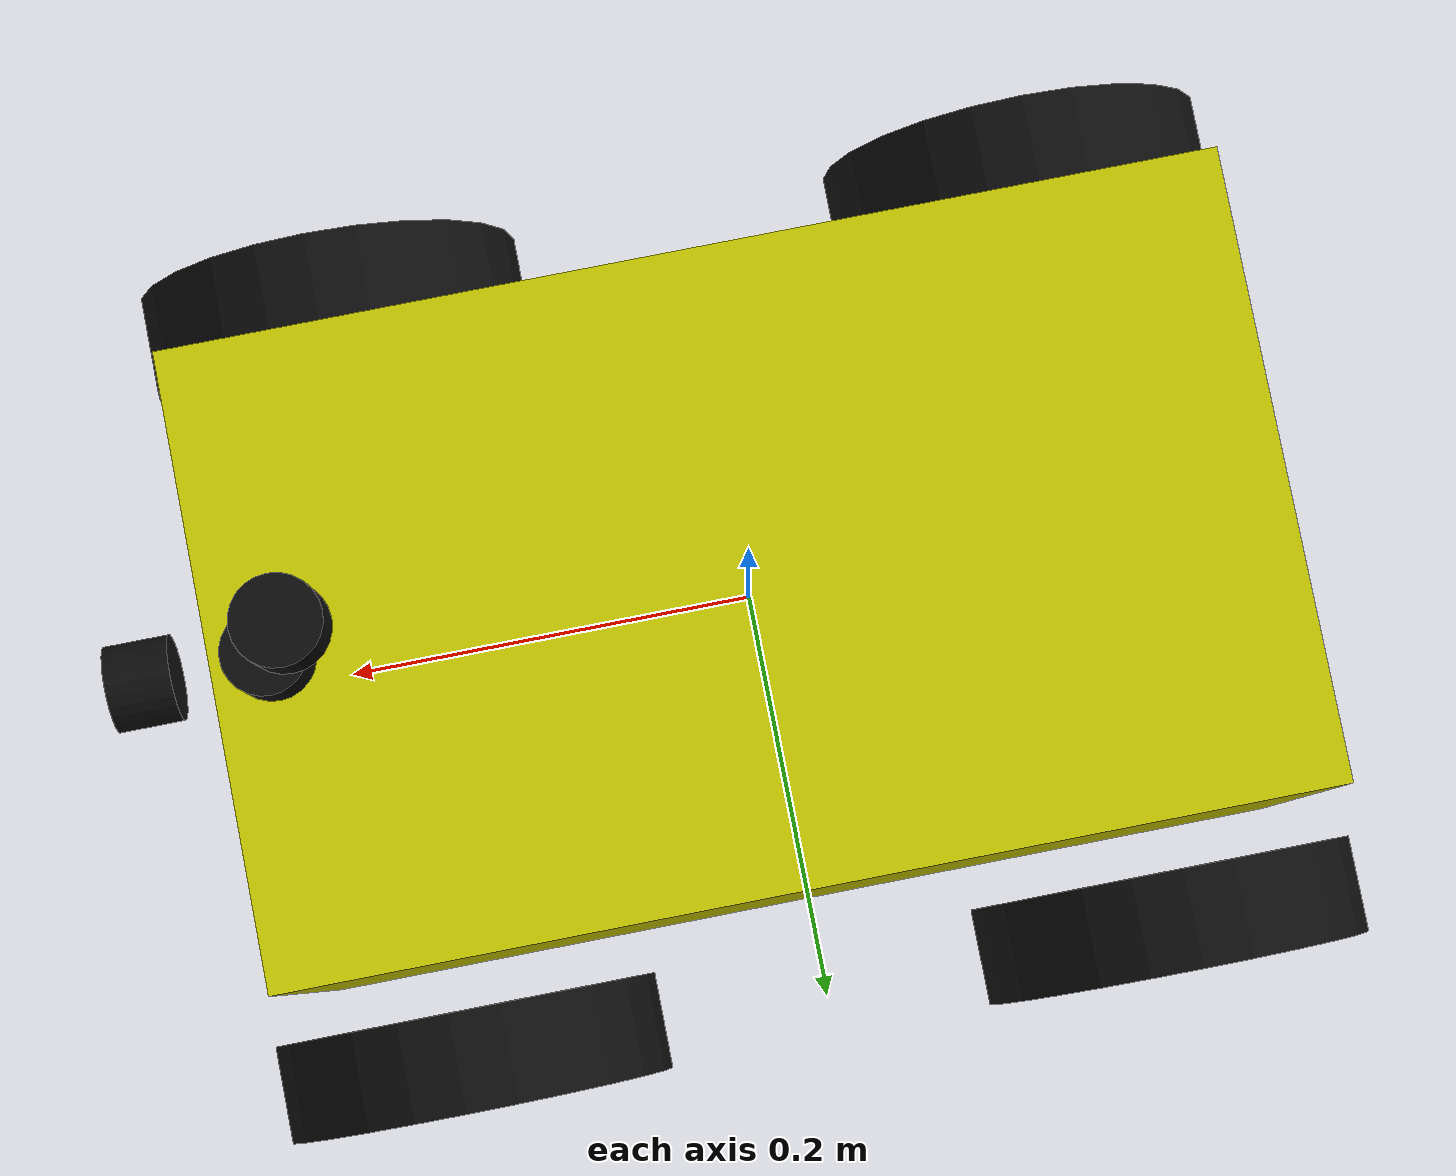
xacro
<?xml version="1.0"?>
<!-- Mikrorobot Mark I -->
<robot name="mikrorobot" xmlns:xacro="http://www.ros.org/wiki/xacro">

  <!-- Use this command to spawn the model in gazebo: rosrun gazebo_ros spawn_model -file `rospack find mikrorobot`/urdf/mikrorobot.urdf -urdf -z 1 -model mikrorobot -->

  <!-- Use this command to generate the urdf (use two -'s in front of inorder): rosrun xacro xacro -inorder mikrorobot.xacro > mikrorobot.urdf -->

  <!-- Constants for robot dimensions -->
  <xacro:property name="PI" value="3.1415926535897931"/>
  <xacro:property name="mass" value="10" /> <!-- arbitrary value for mass -->
  <xacro:property name="width" value="0.3" />
  <xacro:property name="depth" value="0.5" />
  <xacro:property name="height" value="0.27" />
  <xacro:property name="wheel_mass" value="1.5" />
  <xacro:property name="wheel_radius" value="0.1" />
  <xacro:property name="wheel_width" value="0.05" />
  <xacro:property name="camera_link" value="0.05" /> <!-- Size of square 'camera' box -->
  <xacro:property name="wheel_offset_x" value="0.184" /> <!-- Wheel offset depth-direction -->
  <xacro:property name="wheel_offset_y" value="0.198" /> <!-- Wheel offset width-direction -->
  <xacro:property name="wheel_offset_z" value="${-height/2 + 0.04}" /> <!-- Wheel offset height-direction -->

  <!-- Import all Gazebo-customization elements, including Gazebo colors -->
  <xacro:include filename="$(find mikrorobot)/urdf/mikrorobot.gazebo" />

    <!-- Base Link -->
  <link name="base_link">
    <collision>
      <origin xyz="0 0 0" rpy="0 0 0"/>
      <geometry>
	<box size="${depth} ${width} ${height}"/>
      </geometry>
    </collision>

    <visual>
      <origin xyz="0 0 0" rpy="0 0 0"/>
      <geometry>
	<box size="${depth} ${width} ${height}"/>
      </geometry>
      <material name="yellow">
        <color rgba="0.8 0.8 0 1"/>
      </material>
    </visual>

    <inertial>
      <origin xyz="${depth/2} ${width/2} ${height/2}" rpy="0 0 0"/>
      <mass value="${mass}"/>
      <inertia
	  ixx="${mass / 12.0 * (width*width + depth*depth)}" ixy="0.0" ixz="0.0"
	  iyy="${mass / 12.0 * (height*height + depth*depth)}" iyz="0.0"
	  izz="${mass / 12.0 * (width*width + height*height)}"/>
    </inertial>
  </link>

  <!-- Front Right Wheel -->
  <joint name="front_right_wheel_joint" type="continuous">
    <parent link="base_link"/>
    <child link="front_right_wheel"/>
    <origin xyz="${wheel_offset_x} ${-wheel_offset_y} ${wheel_offset_z}" rpy="0 0 0" />
    <axis xyz="0 1 0" rpy="0 0 0" />
  </joint>

  <link name="front_right_wheel">
    <visual>
      <origin xyz="0 0 0" rpy="1.570795 0 0" />
      <geometry>
          <cylinder length="${wheel_width}" radius="${wheel_radius}" />
      </geometry>
      <material name="black">
        <color rgba="0.05 0.05 0.05 1"/>
      </material>
    </visual>

    <collision>
      <origin xyz="0 0 0" rpy="1.570795 0 0"/>
      <geometry>
          <cylinder length="${wheel_width}" radius="${wheel_radius}" />
      </geometry>
    </collision>

    <inertial>
      <mass value="${wheel_mass}" />
      <origin xyz="0 0 ${wheel_width/2}" rpy="0 0 0"/>
      <inertia ixx="${wheel_mass / 12.0*3* (wheel_radius * wheel_radius + wheel_width * wheel_width)}"
               ixy="0"
               ixz="0"
               iyy="${wheel_mass / 12.0*3* (wheel_radius * wheel_radius + wheel_width * wheel_width)}"
               iyz="0"
               izz="${wheel_mass * wheel_radius * wheel_radius / 2.0}" />
    </inertial>
  </link>

  <!-- Back Right Wheel -->
  <joint name="back_right_wheel_joint" type="continuous">
    <parent link="base_link"/>
    <child link="back_right_wheel"/>
    <origin xyz="${-wheel_offset_x} ${-wheel_offset_y} ${wheel_offset_z}" rpy="0 0 0" />
    <axis xyz="0 1 0" rpy="0 0 0" />
  </joint>

  <link name="back_right_wheel">
    <visual>
      <origin xyz="0 0 0" rpy="1.570795 0 0" />
      <geometry>
          <cylinder length="${wheel_width}" radius="${wheel_radius}" />
      </geometry>
      <material name="black"/>
    </visual>

    <collision>
      <origin xyz="0 0 0" rpy="1.570795 0 0"/>
      <geometry>
          <cylinder length="${wheel_width}" radius="${wheel_radius}" />
      </geometry>
    </collision>

    <inertial>
      <mass value="${wheel_mass}" />
      <origin xyz="0 0 ${wheel_width/2}" rpy="0 0 0"/>
      <inertia ixx="${wheel_mass / 12.0*3* (wheel_radius * wheel_radius + wheel_width * wheel_width)}"
               ixy="0"
               ixz="0"
               iyy="${wheel_mass / 12.0*3* (wheel_radius * wheel_radius + wheel_width * wheel_width)}"
               iyz="0"
               izz="${wheel_mass * wheel_radius * wheel_radius / 2.0}" />
    </inertial>
  </link>

  <!-- Front Left Wheel -->
  <joint name="front_left_wheel_joint" type="continuous">
    <parent link="base_link"/>
    <child link="front_left_wheel"/>
    <origin xyz="${wheel_offset_x} ${wheel_offset_y} ${wheel_offset_z}" rpy="0 0 0" />
    <axis xyz="0 1 0" rpy="0 0 0" />
  </joint>

  <link name="front_left_wheel">
    <visual>
      <origin xyz="0 0 0" rpy="1.570795 0 0" />
      <geometry>
          <cylinder length="${wheel_width}" radius="${wheel_radius}" />
      </geometry>
      <material name="black"/>
    </visual>

    <collision>
      <origin xyz="0 0 0" rpy="1.570795 0 0"/>
      <geometry>
          <cylinder length="${wheel_width}" radius="${wheel_radius}" />
      </geometry>
    </collision>

    <inertial>
      <mass value="${wheel_mass}" />
      <origin xyz="0 0 ${wheel_width/2}" rpy="0 0 0"/>
      <inertia ixx="${wheel_mass / 12.0*3* (wheel_radius * wheel_radius + wheel_width * wheel_width)}"
               ixy="0"
               ixz="0"
               iyy="${wheel_mass / 12.0*3* (wheel_radius * wheel_radius + wheel_width * wheel_width)}"
               iyz="0"
               izz="${wheel_mass * wheel_radius * wheel_radius / 2.0}" />
    </inertial>
  </link>

    <!-- Back Left Wheel -->
  <joint name="back_left_wheel_joint" type="continuous">
    <parent link="base_link"/>
    <child link="back_left_wheel"/>
     <origin xyz="${-wheel_offset_x} ${wheel_offset_y} ${wheel_offset_z}" rpy="0 0 0" />
    <axis xyz="0 1 0" rpy="0 0 0" />
  </joint>

  <link name="back_left_wheel">
    <visual>
      <origin xyz="0 0 0" rpy="1.570795 0 0" />
      <geometry>
          <cylinder length="${wheel_width}" radius="${wheel_radius}" />
      </geometry>
      <material name="black"/>
    </visual>

    <collision>
      <origin xyz="0 0 0" rpy="1.570795 0 0"/>
      <geometry>
          <cylinder length="${wheel_width}" radius="${wheel_radius}" />
      </geometry>
    </collision>

    <inertial>
      <mass value="${wheel_mass}" />
      <origin xyz="0 0 ${wheel_width/2}" rpy="0 0 0"/>
      <inertia ixx="${wheel_mass / 12.0*3* (wheel_radius * wheel_radius + wheel_width * wheel_width)}"
               ixy="0"
               ixz="0"
               iyy="${wheel_mass / 12.0*3* (wheel_radius * wheel_radius + wheel_width * wheel_width)}"
               iyz="0"
               izz="${wheel_mass * wheel_radius * wheel_radius / 2.0}" />
    </inertial>
  </link>

    <!-- Camera -->
  <link name="camera_link">

    <collision>
      <origin xyz="0 0 0" rpy="0 0 0"/>
      <geometry>
	<cylinder length="0.03" radius ="0.02"/>
      </geometry>
    </collision>

    <visual>
      <origin xyz="0 0 0" rpy="0 0 0" />
      <geometry>
          <cylinder length="0.03" radius="0.02" />
      </geometry>
      <material name="black"/>
    </visual>

    <inertial>
      <mass value="1e-5" />
      <origin xyz="0 0 0" rpy="0 0 0"/>
      <inertia ixx="1e-6" ixy="0" ixz="0" iyy="1e-6" iyz="0" izz="1e-6" />
    </inertial>
  </link>

  <joint name="camera_joint" type="fixed">
    <parent link="base_link"/>
    <child link="camera_link"/>
    <origin xyz="${depth/2 - 0.03} 0 ${height/2 + 0.02}" rpy="0 0 0" />
    <axis xyz="0 0 0" rpy="0 0 0" />
  </joint>

      <!-- Structure Camera -->
  <link name="camera_depth_optical_frame">

    <collision>
      <origin xyz="0 0 0" rpy="0 0 0"/>
      <geometry>
	<cylinder length="0.03" radius ="0.02"/>
      </geometry>
    </collision>

    <visual>
      <origin xyz="0 0 0" rpy="0 0 0" />
      <geometry>
          <cylinder length="0.03" radius="0.02" />
      </geometry>
      <material name="black"/>
    </visual>

    <inertial>
      <mass value="1e-5" />
      <origin xyz="0 0 0" rpy="0 0 0"/>
      <inertia ixx="1e-6" ixy="0" ixz="0" iyy="1e-6" iyz="0" izz="1e-6" />
    </inertial>
  </link>

  <joint name="structure_camera_joint" type="fixed">
    <parent link="base_link"/>
    <child link="camera_depth_optical_frame"/>
    <origin xyz="${depth/2 + 0.03} 0 ${height/2}" rpy="${-PI/2} 0 ${-PI/2}" />
    <axis xyz="0 0 0" rpy="0 0 0" />
  </joint>

      <!-- Laser -->
  <link name="laser_frame">

    <collision>
      <origin xyz="0 0 0" rpy="0 0 0"/>
      <geometry>
	<cylinder length="0.03" radius ="0.02"/>
      </geometry>
    </collision>

    <visual>
      <origin xyz="0 0 0" rpy="0 0 0" />
      <geometry>
          <cylinder length="0.03" radius="0.02" />
      </geometry>
      <material name="black"/>
    </visual>

    <inertial>
      <mass value="1e-5" />
      <origin xyz="0 0 0" rpy="0 0 0"/>
      <inertia ixx="1e-6" ixy="0" ixz="0" iyy="1e-6" iyz="0" izz="1e-6" />
    </inertial>
  </link>

  <joint name="laser_joint" type="fixed">
    <parent link="base_link"/>
    <child link="laser_frame"/>
    <origin xyz="${depth/2 - 0.05} 0 ${height/2 + 0.12}" rpy="0 0 ${PI}" />
    <axis xyz="0 0 0" rpy="0 0 0" />
  </joint>

        <!-- IMU -->
  <link name="imu_frame">

    <inertial>
      <mass value="1e-5" />
      <origin xyz="0 0 0" rpy="0 0 0"/>
      <inertia ixx="1e-6" ixy="0" ixz="0" iyy="1e-6" iyz="0" izz="1e-6" />
    </inertial>
  </link>

  <joint name="imu_joint" type="fixed">
    <parent link="base_link"/>
    <child link="imu_frame"/>
    <origin xyz="${depth/2 - 0.10} ${-0.02} ${- height/2 + 0.4}" rpy="${PI/4} ${PI} 0" />
    <axis xyz="0 0 0" rpy="0 0 0" />
  </joint>

  <!-- Transmissions -->
  <transmission name="tran_f_r">
    <type>transmission_interface/SimpleTransmission</type>
    <joint name="front_right_wheel_joint">
      <hardwareInterface>EffortJointInterface</hardwareInterface>
    </joint>
    <actuator name="motor_f_r">
      <hardwareInterface>EffortJointInterface</hardwareInterface>
      <mechanicalReduction>1</mechanicalReduction>
    </actuator>
  </transmission>

  <transmission name="tran_b_r">
    <type>transmission_interface/SimpleTransmission</type>
    <joint name="back_right_wheel_joint">
      <hardwareInterface>EffortJointInterface</hardwareInterface>
    </joint>
    <actuator name="motor_b_r">
      <hardwareInterface>EffortJointInterface</hardwareInterface>
      <mechanicalReduction>1</mechanicalReduction>
    </actuator>
  </transmission>

  <transmission name="tran_f_l">
    <type>transmission_interface/SimpleTransmission</type>
    <joint name="front_left_wheel_joint">
      <hardwareInterface>EffortJointInterface</hardwareInterface>
    </joint>
    <actuator name="motor_f_l">
      <hardwareInterface>EffortJointInterface</hardwareInterface>
      <mechanicalReduction>1</mechanicalReduction>
    </actuator>
  </transmission>

  <transmission name="tran_b_l">
    <type>transmission_interface/SimpleTransmission</type>
    <joint name="back_left_wheel_joint">
      <hardwareInterface>EffortJointInterface</hardwareInterface>
    </joint>
    <actuator name="motor_b_l">
      <hardwareInterface>EffortJointInterface</hardwareInterface>
      <mechanicalReduction>1</mechanicalReduction>
    </actuator>
  </transmission>

</robot>
